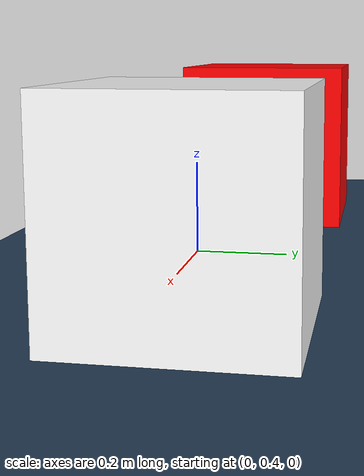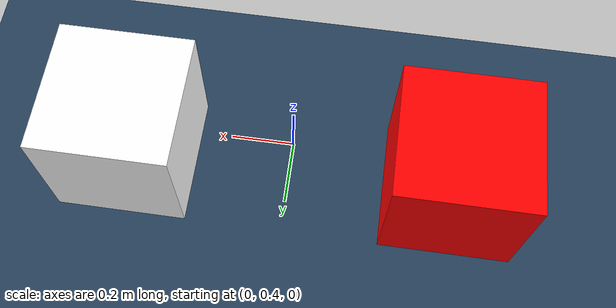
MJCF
<mujoco model="table">

    <option timestep="0.001" cone="elliptic" impratio="1"/>

    <asset>
        <material name="white" specular="0.5" shininess="0.25" rgba="1.0 1.0 1.0 1"/>
        <material name="red" specular="0.5" shininess="0.25" rgba="1.0 0.0 0.0 1"/>

        <texture type="skybox" builtin="gradient" rgb1="0.3 0.5 0.7" rgb2="0 0 0" width="512"
                 height="3072"/>
        <texture type="2d" name="groundplane" builtin="checker" mark="edge" rgb1="0.2 0.3 0.4"
                 rgb2="0.1 0.2 0.3" markrgb="0.8 0.8 0.8" width="300" height="300"/>
        <material name="groundplane" texture="groundplane" texuniform="true" texrepeat="5 5"
                  reflectance="0.2"/>
    </asset>

    <default>
        <geom condim="4" solref="0.02 0.3"/>
        <default class="rim">
            <geom type="box" material="grey" condim="6" friction="10000 0.0 0.0" priority="1"
                  solref="-2000000 -250" solimp="0.99 0.999 0.001 0.5 2"/>
        </default>
    </default>

    <worldbody>
        <body name="box_1">
            <geom name="box_1" type="box" material="white" size="0.2 0.2 0.2" pos="0.5 0.5 0.2"
                    condim="4" friction="0.5 0.5 0.0" priority="1"
                    solref="0.0125 0.5" solimp="0.9 0.999 0.001 0.5 2"/>
        </body>

        <body name="box_2">
            <geom name="box_2" type="box" material="red" size="0.2 0.2 0.2" pos="-0.5 0.5 0.2"
                    condim="4" friction="0.5 0.5 0.0" priority="1"
                    solref="0.0125 0.5" solimp="0.9 0.999 0.001 0.5 2"/>
        </body>
    </worldbody>

    <worldbody>
        <light pos="0 0 3" dir="0 0 -1" directional="true"/>
        <geom pos="0 0 0.0" name="floor" size="0 0 0.05" type="plane" material="groundplane"/>
    </worldbody>
</mujoco>
